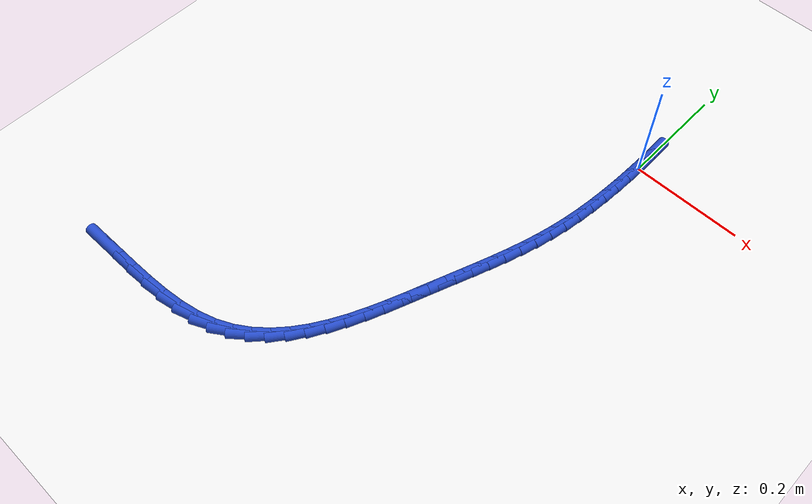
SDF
<sdf version="1.6">
 <world name="default">
  <model name="ground_plane">
   <static>1</static>
   <link name="link">
    <collision name="collision">
     <geometry><plane><normal>0 0 1</normal><size>100 100</size></plane></geometry>
     <surface><friction><ode><mu>100</mu><mu2>50</mu2></ode></friction></surface>
    </collision>
    <visual name="visual">
     <cast_shadows>0</cast_shadows>
     <geometry><plane><normal>0 0 1</normal><size>100 100</size></plane></geometry>
     <material>
      <script><uri>file://media/materials/scripts/gazebo.material</uri><name>Gazebo/WhiteGlow</name></script>
     </material>
    </visual>
   </link>
  </model>
  <model name="line">
   <link name="link_0">
    <pose>1.6046192152785466e-17 4.163336342344337e-17 0.01 0 1.57 1.559025878039072</pose>
    <collision name="collision">
     <geometry><cylinder><radius>0.01</radius><length>0.08</length></cylinder></geometry>
    </collision>
    <visual name="visual">
     <material>
      <script><name>Gazebo/Blue</name><uri>file://media/materials/scripts/gazebo.material</uri></script>
     </material>
     <geometry><cylinder><radius>0.01</radius><length>0.08</length></cylinder></geometry>
    </visual>
   </link>
   <link name="link_1">
    <pose>0.00036611692132412993 0.031103318238790686 0.01 0 1.57 -1.558527012413176</pose>
    <collision name="collision">
     <geometry><cylinder><radius>0.01</radius><length>0.08</length></cylinder></geometry>
    </collision>
    <visual name="visual">
     <material>
      <script><name>Gazebo/Blue</name><uri>file://media/materials/scripts/gazebo.material</uri></script>
     </material>
     <geometry><cylinder><radius>0.01</radius><length>0.08</length></cylinder></geometry>
    </visual>
   </link>
   <link name="link_257">
    <pose>-0.5439807446126144 -0.7381064642662277 0.01 0 1.57 0.017361143782428715</pose>
    <collision name="collision">
     <geometry><cylinder><radius>0.01</radius><length>0.08</length></cylinder></geometry>
    </collision>
    <visual name="visual">
     <material>
      <script><name>Gazebo/Blue</name><uri>file://media/materials/scripts/gazebo.material</uri></script>
     </material>
     <geometry><cylinder><radius>0.01</radius><length>0.08</length></cylinder></geometry>
    </visual>
   </link>
   <link name="link_258">
    <pose>-0.5083212882830698 -0.7374873131104623 0.01 0 1.57 0.01656475025271902</pose>
    <collision name="collision">
     <geometry><cylinder><radius>0.01</radius><length>0.08</length></cylinder></geometry>
    </collision>
    <visual name="visual">
     <material>
      <script><name>Gazebo/Blue</name><uri>file://media/materials/scripts/gazebo.material</uri></script>
     </material>
     <geometry><cylinder><radius>0.01</radius><length>0.08</length></cylinder></geometry>
    </visual>
   </link>
   <link name="link_259">
    <pose>-0.47146411355475015 -0.7368767273686445 0.01 0 1.57 0.03339035565874218</pose>
    <collision name="collision">
     <geometry><cylinder><radius>0.01</radius><length>0.08</length></cylinder></geometry>
    </collision>
    <visual name="visual">
     <material>
      <script><name>Gazebo/Blue</name><uri>file://media/materials/scripts/gazebo.material</uri></script>
     </material>
     <geometry><cylinder><radius>0.01</radius><length>0.08</length></cylinder></geometry>
    </visual>
   </link>
   <link name="link_260">
    <pose>-0.4341797518341083 -0.7356313263967829 0.01 0 1.57 0.06820824792162712</pose>
    <collision name="collision">
     <geometry><cylinder><radius>0.01</radius><length>0.08</length></cylinder></geometry>
    </collision>
    <visual name="visual">
     <material>
      <script><name>Gazebo/Blue</name><uri>file://media/materials/scripts/gazebo.material</uri></script>
     </material>
     <geometry><cylinder><radius>0.01</radius><length>0.08</length></cylinder></geometry>
    </visual>
   </link>
   <link name="link_261">
    <pose>-0.39723873452759756 -0.7331077295508853 0.01 0 1.57 0.12344194433074361</pose>
    <collision name="collision">
     <geometry><cylinder><radius>0.01</radius><length>0.08</length></cylinder></geometry>
    </collision>
    <visual name="visual">
     <material>
      <script><name>Gazebo/Blue</name><uri>file://media/materials/scripts/gazebo.material</uri></script>
     </material>
     <geometry><cylinder><radius>0.01</radius><length>0.08</length></cylinder></geometry>
    </visual>
   </link>
   <link name="link_262">
    <pose>-0.36141159304167125 -0.7286625561869613 0.01 0 1.57 0.20366468627724169</pose>
    <collision name="collision">
     <geometry><cylinder><radius>0.01</radius><length>0.08</length></cylinder></geometry>
    </collision>
    <visual name="visual">
     <material>
      <script><name>Gazebo/Blue</name><uri>file://media/materials/scripts/gazebo.material</uri></script>
     </material>
     <geometry><cylinder><radius>0.01</radius><length>0.08</length></cylinder></geometry>
    </visual>
   </link>
   <link name="link_263">
    <pose>-0.32746885878278226 -0.7216524256610188 0.01 0 1.57 0.3155577602773126</pose>
    <collision name="collision">
     <geometry><cylinder><radius>0.01</radius><length>0.08</length></cylinder></geometry>
    </collision>
    <visual name="visual">
     <material>
      <script><name>Gazebo/Blue</name><uri>file://media/materials/scripts/gazebo.material</uri></script>
     </material>
     <geometry><cylinder><radius>0.01</radius><length>0.08</length></cylinder></geometry>
    </visual>
   </link>
   <link name="link_264">
    <pose>-0.2961779219352234 -0.7114369818351397 0.01 0 1.57 0.45321242145023954</pose>
    <collision name="collision">
     <geometry><cylinder><radius>0.01</radius><length>0.08</length></cylinder></geometry>
    </collision>
    <visual name="visual">
     <material>
      <script><name>Gazebo/Blue</name><uri>file://media/materials/scripts/gazebo.material</uri></script>
     </material>
     <geometry><cylinder><radius>0.01</radius><length>0.08</length></cylinder></geometry>
    </visual>
   </link>
   <link name="link_265">
    <pose>-0.2679703326987003 -0.6976992299960051 0.01 0 1.57 0.5904356797543624</pose>
    <collision name="collision">
     <geometry><cylinder><radius>0.01</radius><length>0.08</length></cylinder></geometry>
    </collision>
    <visual name="visual">
     <material>
      <script><name>Gazebo/Blue</name><uri>file://media/materials/scripts/gazebo.material</uri></script>
     </material>
     <geometry><cylinder><radius>0.01</radius><length>0.08</length></cylinder></geometry>
    </visual>
   </link>
   <link name="link_266">
    <pose>-0.2426479298171867 -0.6807284891593218 0.01 0 1.57 0.7183581448827443</pose>
    <collision name="collision">
     <geometry><cylinder><radius>0.01</radius><length>0.08</length></cylinder></geometry>
    </collision>
    <visual name="visual">
     <material>
      <script><name>Gazebo/Blue</name><uri>file://media/materials/scripts/gazebo.material</uri></script>
     </material>
     <geometry><cylinder><radius>0.01</radius><length>0.08</length></cylinder></geometry>
    </visual>
   </link>
   <link name="link_267">
    <pose>-0.21994325172406623 -0.6608808037105781 0.01 0 1.57 0.8325081628437137</pose>
    <collision name="collision">
     <geometry><cylinder><radius>0.01</radius><length>0.08</length></cylinder></geometry>
    </collision>
    <visual name="visual">
     <material>
      <script><name>Gazebo/Blue</name><uri>file://media/materials/scripts/gazebo.material</uri></script>
     </material>
     <geometry><cylinder><radius>0.01</radius><length>0.08</length></cylinder></geometry>
    </visual>
   </link>
   <link name="link_268">
    <pose>-0.1995888368527216 -0.6385122180352615 0.01 0 1.57 0.9306549724010862</pose>
    <collision name="collision">
     <geometry><cylinder><radius>0.01</radius><length>0.08</length></cylinder></geometry>
    </collision>
    <visual name="visual">
     <material>
      <script><name>Gazebo/Blue</name><uri>file://media/materials/scripts/gazebo.material</uri></script>
     </material>
     <geometry><cylinder><radius>0.01</radius><length>0.08</length></cylinder></geometry>
    </visual>
   </link>
   <link name="link_269">
    <pose>-0.18131722363653557 -0.6139787765188593 0.01 0 1.57 1.012405461267837</pose>
    <collision name="collision">
     <geometry><cylinder><radius>0.01</radius><length>0.08</length></cylinder></geometry>
    </collision>
    <visual name="visual">
     <material>
      <script><name>Gazebo/Blue</name><uri>file://media/materials/scripts/gazebo.material</uri></script>
     </material>
     <geometry><cylinder><radius>0.01</radius><length>0.08</length></cylinder></geometry>
    </visual>
   </link>
   <link name="link_270">
    <pose>-0.1648609505088909 -0.5876365235468599 0.01 0 1.57 1.07847836234105</pose>
    <collision name="collision">
     <geometry><cylinder><radius>0.01</radius><length>0.08</length></cylinder></geometry>
    </collision>
    <visual name="visual">
     <material>
      <script><name>Gazebo/Blue</name><uri>file://media/materials/scripts/gazebo.material</uri></script>
     </material>
     <geometry><cylinder><radius>0.01</radius><length>0.08</length></cylinder></geometry>
    </visual>
   </link>
   <link name="link_271">
    <pose>-0.1499525559031702 -0.55984150350475 0.01 0 1.57 1.1300512230944035</pose>
    <collision name="collision">
     <geometry><cylinder><radius>0.01</radius><length>0.08</length></cylinder></geometry>
    </collision>
    <visual name="visual">
     <material>
      <script><name>Gazebo/Blue</name><uri>file://media/materials/scripts/gazebo.material</uri></script>
     </material>
     <geometry><cylinder><radius>0.01</radius><length>0.08</length></cylinder></geometry>
    </visual>
   </link>
   <link name="link_272">
    <pose>-0.1363245782527562 -0.5309497607780178 0.01 0 1.57 1.168318619824166</pose>
    <collision name="collision">
     <geometry><cylinder><radius>0.01</radius><length>0.08</length></cylinder></geometry>
    </collision>
    <visual name="visual">
     <material>
      <script><name>Gazebo/Blue</name><uri>file://media/materials/scripts/gazebo.material</uri></script>
     </material>
     <geometry><cylinder><radius>0.01</radius><length>0.08</length></cylinder></geometry>
    </visual>
   </link>
   <link name="link_273">
    <pose>-0.12370955599103171 -0.5013173397521509 0.01 0 1.57 1.194239132779101</pose>
    <collision name="collision">
     <geometry><cylinder><radius>0.01</radius><length>0.08</length></cylinder></geometry>
    </collision>
    <visual name="visual">
     <material>
      <script><name>Gazebo/Blue</name><uri>file://media/materials/scripts/gazebo.material</uri></script>
     </material>
     <geometry><cylinder><radius>0.01</radius><length>0.08</length></cylinder></geometry>
    </visual>
   </link>
   <link name="link_274">
    <pose>-0.11184002755137935 -0.47130028481263647 0.01 0 1.57 1.2084012921226877</pose>
    <collision name="collision">
     <geometry><cylinder><radius>0.01</radius><length>0.08</length></cylinder></geometry>
    </collision>
    <visual name="visual">
     <material>
      <script><name>Gazebo/Blue</name><uri>file://media/materials/scripts/gazebo.material</uri></script>
     </material>
     <geometry><cylinder><radius>0.01</radius><length>0.08</length></cylinder></geometry>
    </visual>
   </link>
   <link name="link_275">
    <pose>-0.10044853136718186 -0.4412546403449625 0.01 0 1.57 1.2110152120747062</pose>
    <collision name="collision">
     <geometry><cylinder><radius>0.01</radius><length>0.08</length></cylinder></geometry>
    </collision>
    <visual name="visual">
     <material>
      <script><name>Gazebo/Blue</name><uri>file://media/materials/scripts/gazebo.material</uri></script>
     </material>
     <geometry><cylinder><radius>0.01</radius><length>0.08</length></cylinder></geometry>
    </visual>
   </link>
   <link name="link_276">
    <pose>-0.0892692469524621 -0.4115345925356329 0.01 0 1.57 1.2080070617055054</pose>
    <collision name="collision">
     <geometry><cylinder><radius>0.01</radius><length>0.08</length></cylinder></geometry>
    </collision>
    <visual name="visual">
     <material>
      <script><name>Gazebo/Blue</name><uri>file://media/materials/scripts/gazebo.material</uri></script>
     </material>
     <geometry><cylinder><radius>0.01</radius><length>0.08</length></cylinder></geometry>
    </visual>
   </link>
   <link name="link_277">
    <pose>-0.07818286267207965 -0.3823284352980692 0.01 0 1.57 1.210405991820442</pose>
    <collision name="collision">
     <geometry><cylinder><radius>0.01</radius><length>0.08</length></cylinder></geometry>
    </collision>
    <visual name="visual">
     <material>
      <script><name>Gazebo/Blue</name><uri>file://media/materials/scripts/gazebo.material</uri></script>
     </material>
     <geometry><cylinder><radius>0.01</radius><length>0.08</length></cylinder></geometry>
    </visual>
   </link>
   <link name="link_278">
    <pose>-0.0673301868816787 -0.353529928145217 0.01 0 1.57 1.219617790384027</pose>
    <collision name="collision">
     <geometry><cylinder><radius>0.01</radius><length>0.08</length></cylinder></geometry>
    </collision>
    <visual name="visual">
     <material>
      <script><name>Gazebo/Blue</name><uri>file://media/materials/scripts/gazebo.material</uri></script>
     </material>
     <geometry><cylinder><radius>0.01</radius><length>0.08</length></cylinder></geometry>
    </visual>
   </link>
   <link name="link_279">
    <pose>-0.05687876603556694 -0.32500255498592157 0.01 0 1.57 1.2358433899544152</pose>
    <collision name="collision">
     <geometry><cylinder><radius>0.01</radius><length>0.08</length></cylinder></geometry>
    </collision>
    <visual name="visual">
     <material>
      <script><name>Gazebo/Blue</name><uri>file://media/materials/scripts/gazebo.material</uri></script>
     </material>
     <geometry><cylinder><radius>0.01</radius><length>0.08</length></cylinder></geometry>
    </visual>
   </link>
   <link name="link_280">
    <pose>-0.04699614658805232 -0.296609799729029 0.01 0 1.57 1.2591783240784458</pose>
    <collision name="collision">
     <geometry><cylinder><radius>0.01</radius><length>0.08</length></cylinder></geometry>
    </collision>
    <visual name="visual">
     <material>
      <script><name>Gazebo/Blue</name><uri>file://media/materials/scripts/gazebo.material</uri></script>
     </material>
     <geometry><cylinder><radius>0.01</radius><length>0.08</length></cylinder></geometry>
    </visual>
   </link>
   <link name="link_281">
    <pose>-0.03784987499344181 -0.2682151462833825 0.01 0 1.57 1.2895805880050586</pose>
    <collision name="collision">
     <geometry><cylinder><radius>0.01</radius><length>0.08</length></cylinder></geometry>
    </collision>
    <visual name="visual">
     <material>
      <script><name>Gazebo/Blue</name><uri>file://media/materials/scripts/gazebo.material</uri></script>
     </material>
     <geometry><cylinder><radius>0.01</radius><length>0.08</length></cylinder></geometry>
    </visual>
   </link>
   <link name="link_282">
    <pose>-0.029607497706043408 -0.23968207855782828 0.01 0 1.57 1.3268279982406372</pose>
    <collision name="collision">
     <geometry><cylinder><radius>0.01</radius><length>0.08</length></cylinder></geometry>
    </collision>
    <visual name="visual">
     <material>
      <script><name>Gazebo/Blue</name><uri>file://media/materials/scripts/gazebo.material</uri></script>
     </material>
     <geometry><cylinder><radius>0.01</radius><length>0.08</length></cylinder></geometry>
    </visual>
   </link>
   <link name="link_283">
    <pose>-0.022436434442971893 -0.21087415773684498 0.01 0 1.57 1.368046530507714</pose>
    <collision name="collision">
     <geometry><cylinder><radius>0.01</radius><length>0.08</length></cylinder></geometry>
    </collision>
    <visual name="visual">
     <material>
      <script><name>Gazebo/Blue</name><uri>file://media/materials/scripts/gazebo.material</uri></script>
     </material>
     <geometry><cylinder><radius>0.01</radius><length>0.08</length></cylinder></geometry>
    </visual>
   </link>
   <link name="link_284">
    <pose>-0.016437997703667676 -0.18169525264476713 0.01 0 1.57 1.40645900735619</pose>
    <collision name="collision">
     <geometry><cylinder><radius>0.01</radius><length>0.08</length></cylinder></geometry>
    </collision>
    <visual name="visual">
     <material>
      <script><name>Gazebo/Blue</name><uri>file://media/materials/scripts/gazebo.material</uri></script>
     </material>
     <geometry><cylinder><radius>0.01</radius><length>0.08</length></cylinder></geometry>
    </visual>
   </link>
   <link name="link_285">
    <pose>-0.011539324159884944 -0.1521554325599937 0.01 0 1.57 1.4409754980692548</pose>
    <collision name="collision">
     <geometry><cylinder><radius>0.01</radius><length>0.08</length></cylinder></geometry>
    </collision>
    <visual name="visual">
     <material>
      <script><name>Gazebo/Blue</name><uri>file://media/materials/scripts/gazebo.material</uri></script>
     </material>
     <geometry><cylinder><radius>0.01</radius><length>0.08</length></cylinder></geometry>
    </visual>
   </link>
   <link name="link_286">
    <pose>-0.007639202258086742 -0.12228205156121923 0.01 0 1.57 1.4716256085399113</pose>
    <collision name="collision">
     <geometry><cylinder><radius>0.01</radius><length>0.08</length></cylinder></geometry>
    </collision>
    <visual name="visual">
     <material>
      <script><name>Gazebo/Blue</name><uri>file://media/materials/scripts/gazebo.material</uri></script>
     </material>
     <geometry><cylinder><radius>0.01</radius><length>0.08</length></cylinder></geometry>
    </visual>
   </link>
   <link name="link_287">
    <pose>-0.004636420444736105 -0.09210246372713811 0.01 0 1.57 1.4984746763241972</pose>
    <collision name="collision">
     <geometry><cylinder><radius>0.01</radius><length>0.08</length></cylinder></geometry>
    </collision>
    <visual name="visual">
     <material>
      <script><name>Gazebo/Blue</name><uri>file://media/materials/scripts/gazebo.material</uri></script>
     </material>
     <geometry><cylinder><radius>0.01</radius><length>0.08</length></cylinder></geometry>
    </visual>
   </link>
   <link name="link_288">
    <pose>-0.0024297671662960748 -0.06164402313644485 0.01 0 1.57 1.5216097438261842</pose>
    <collision name="collision">
     <geometry><cylinder><radius>0.01</radius><length>0.08</length></cylinder></geometry>
    </collision>
    <visual name="visual">
     <material>
      <script><name>Gazebo/Blue</name><uri>file://media/materials/scripts/gazebo.material</uri></script>
     </material>
     <geometry><cylinder><radius>0.01</radius><length>0.08</length></cylinder></geometry>
    </visual>
   </link>
   <link name="link_289">
    <pose>-0.000918030869229686 -0.030934083867833938 0.01 0 1.57 1.541128032600814</pose>
    <collision name="collision">
     <geometry><cylinder><radius>0.01</radius><length>0.08</length></cylinder></geometry>
    </collision>
    <visual name="visual">
     <material>
      <script><name>Gazebo/Blue</name><uri>file://media/materials/scripts/gazebo.material</uri></script>
     </material>
     <geometry><cylinder><radius>0.01</radius><length>0.08</length></cylinder></geometry>
    </visual>
   </link>
   <link name="link_290">
    <pose>2.2768245622195593e-17 1.6653345369377348e-16 0.01 0 1.57 1.5571278866220641</pose>
    <collision name="collision">
     <geometry><cylinder><radius>0.01</radius><length>0.08</length></cylinder></geometry>
    </collision>
    <visual name="visual">
     <material>
      <script><name>Gazebo/Blue</name><uri>file://media/materials/scripts/gazebo.material</uri></script>
     </material>
     <geometry><cylinder><radius>0.01</radius><length>0.08</length></cylinder></geometry>
    </visual>
   </link>
  </model>
 </world>
</sdf>
